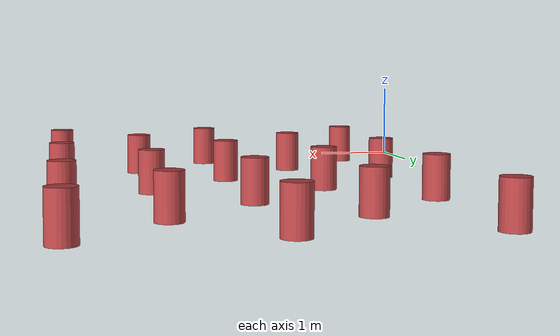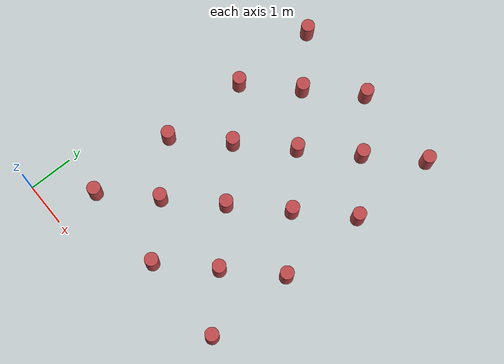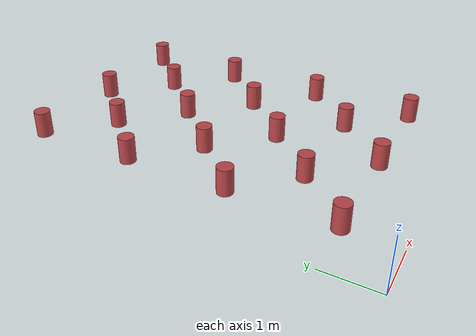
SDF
<?xml version="1.0" ?>
<!-- |    This document was autogenerated by xacro from objetos_cilindrocos.xacro.sdf  | -->
<!-- |    EDITING THIS FILE BY HAND IS NOT RECOMMENDED                                 | -->
<!-- arquivo: objetos_cilindricos.xacro -->
<!-- Gerar com:
     $ xacro objetos_cilindrocos.xacro.sdf > model.sdf
-->
<sdf version="1.8">
  <model name="obstaculos_cilindricos">
    <static>true</static>
    <link name="obstaculos">
      <collision name="um_um_collision">
        <pose>1 1 0.25 0 0 0</pose>
        <geometry>
          <cylinder>
            <radius>0.15</radius>
            <length>0.5</length>
          </cylinder>
        </geometry>
        <max_contacts>10</max_contacts>
        <surface>
          <bounce/>
          <friction>
            <ode/>
          </friction>
          <contact>
            <ode/>
          </contact>
        </surface>
      </collision>
      <visual name="um_um_visual">
        <pose>1 1 0.25 0 0 0</pose>
        <geometry>
          <cylinder>
            <radius>0.15</radius>
            <length>0.5</length>
          </cylinder>
        </geometry>
        <material>
          <ambient>.74 .28 .29 1</ambient>
          <diffuse>.74 .28 .29 1</diffuse>
          <specular>1 1 1 1</specular>
        </material>
      </visual>
      <collision name="um_tres_collision">
        <pose>1 3 0.25 0 0 0</pose>
        <geometry>
          <cylinder>
            <radius>0.15</radius>
            <length>0.5</length>
          </cylinder>
        </geometry>
        <max_contacts>10</max_contacts>
        <surface>
          <bounce/>
          <friction>
            <ode/>
          </friction>
          <contact>
            <ode/>
          </contact>
        </surface>
      </collision>
      <visual name="um_tres_visual">
        <pose>1 3 0.25 0 0 0</pose>
        <geometry>
          <cylinder>
            <radius>0.15</radius>
            <length>0.5</length>
          </cylinder>
        </geometry>
        <material>
          <ambient>.74 .28 .29 1</ambient>
          <diffuse>.74 .28 .29 1</diffuse>
          <specular>1 1 1 1</specular>
        </material>
      </visual>
      <collision name="um_cinco_collision">
        <pose>1 5 0.25 0 0 0</pose>
        <geometry>
          <cylinder>
            <radius>0.15</radius>
            <length>0.5</length>
          </cylinder>
        </geometry>
        <max_contacts>10</max_contacts>
        <surface>
          <bounce/>
          <friction>
            <ode/>
          </friction>
          <contact>
            <ode/>
          </contact>
        </surface>
      </collision>
      <visual name="um_cinco_visual">
        <pose>1 5 0.25 0 0 0</pose>
        <geometry>
          <cylinder>
            <radius>0.15</radius>
            <length>0.5</length>
          </cylinder>
        </geometry>
        <material>
          <ambient>.74 .28 .29 1</ambient>
          <diffuse>.74 .28 .29 1</diffuse>
          <specular>1 1 1 1</specular>
        </material>
      </visual>
      <collision name="um_sete_collision">
        <pose>1 7 0.25 0 0 0</pose>
        <geometry>
          <cylinder>
            <radius>0.15</radius>
            <length>0.5</length>
          </cylinder>
        </geometry>
        <max_contacts>10</max_contacts>
        <surface>
          <bounce/>
          <friction>
            <ode/>
          </friction>
          <contact>
            <ode/>
          </contact>
        </surface>
      </collision>
      <visual name="um_sete_visual">
        <pose>1 7 0.25 0 0 0</pose>
        <geometry>
          <cylinder>
            <radius>0.15</radius>
            <length>0.5</length>
          </cylinder>
        </geometry>
        <material>
          <ambient>.74 .28 .29 1</ambient>
          <diffuse>.74 .28 .29 1</diffuse>
          <specular>1 1 1 1</specular>
        </material>
      </visual>
      <collision name="dois_dois_collision">
        <pose>2 2 0.25 0 0 0</pose>
        <geometry>
          <cylinder>
            <radius>0.15</radius>
            <length>0.5</length>
          </cylinder>
        </geometry>
        <max_contacts>10</max_contacts>
        <surface>
          <bounce/>
          <friction>
            <ode/>
          </friction>
          <contact>
            <ode/>
          </contact>
        </surface>
      </collision>
      <visual name="dois_dois_visual">
        <pose>2 2 0.25 0 0 0</pose>
        <geometry>
          <cylinder>
            <radius>0.15</radius>
            <length>0.5</length>
          </cylinder>
        </geometry>
        <material>
          <ambient>.74 .28 .29 1</ambient>
          <diffuse>.74 .28 .29 1</diffuse>
          <specular>1 1 1 1</specular>
        </material>
      </visual>
      <collision name="dois_tres_collision">
        <pose>2 4 0.25 0 0 0</pose>
        <geometry>
          <cylinder>
            <radius>0.15</radius>
            <length>0.5</length>
          </cylinder>
        </geometry>
        <max_contacts>10</max_contacts>
        <surface>
          <bounce/>
          <friction>
            <ode/>
          </friction>
          <contact>
            <ode/>
          </contact>
        </surface>
      </collision>
      <visual name="dois_tres_visual">
        <pose>2 4 0.25 0 0 0</pose>
        <geometry>
          <cylinder>
            <radius>0.15</radius>
            <length>0.5</length>
          </cylinder>
        </geometry>
        <material>
          <ambient>.74 .28 .29 1</ambient>
          <diffuse>.74 .28 .29 1</diffuse>
          <specular>1 1 1 1</specular>
        </material>
      </visual>
      <collision name="dois_seis_collision">
        <pose>2 6 0.25 0 0 0</pose>
        <geometry>
          <cylinder>
            <radius>0.15</radius>
            <length>0.5</length>
          </cylinder>
        </geometry>
        <max_contacts>10</max_contacts>
        <surface>
          <bounce/>
          <friction>
            <ode/>
          </friction>
          <contact>
            <ode/>
          </contact>
        </surface>
      </collision>
      <visual name="dois_seis_visual">
        <pose>2 6 0.25 0 0 0</pose>
        <geometry>
          <cylinder>
            <radius>0.15</radius>
            <length>0.5</length>
          </cylinder>
        </geometry>
        <material>
          <ambient>.74 .28 .29 1</ambient>
          <diffuse>.74 .28 .29 1</diffuse>
          <specular>1 1 1 1</specular>
        </material>
      </visual>
      <collision name="tres_um_collision">
        <pose>3 1 0.25 0 0 0</pose>
        <geometry>
          <cylinder>
            <radius>0.15</radius>
            <length>0.5</length>
          </cylinder>
        </geometry>
        <max_contacts>10</max_contacts>
        <surface>
          <bounce/>
          <friction>
            <ode/>
          </friction>
          <contact>
            <ode/>
          </contact>
        </surface>
      </collision>
      <visual name="tres_um_visual">
        <pose>3 1 0.25 0 0 0</pose>
        <geometry>
          <cylinder>
            <radius>0.15</radius>
            <length>0.5</length>
          </cylinder>
        </geometry>
        <material>
          <ambient>.74 .28 .29 1</ambient>
          <diffuse>.74 .28 .29 1</diffuse>
          <specular>1 1 1 1</specular>
        </material>
      </visual>
      <collision name="tres_tres_collision">
        <pose>3 3 0.25 0 0 0</pose>
        <geometry>
          <cylinder>
            <radius>0.15</radius>
            <length>0.5</length>
          </cylinder>
        </geometry>
        <max_contacts>10</max_contacts>
        <surface>
          <bounce/>
          <friction>
            <ode/>
          </friction>
          <contact>
            <ode/>
          </contact>
        </surface>
      </collision>
      <visual name="tres_tres_visual">
        <pose>3 3 0.25 0 0 0</pose>
        <geometry>
          <cylinder>
            <radius>0.15</radius>
            <length>0.5</length>
          </cylinder>
        </geometry>
        <material>
          <ambient>.74 .28 .29 1</ambient>
          <diffuse>.74 .28 .29 1</diffuse>
          <specular>1 1 1 1</specular>
        </material>
      </visual>
      <collision name="tres_cinco_collision">
        <pose>3 5 0.25 0 0 0</pose>
        <geometry>
          <cylinder>
            <radius>0.15</radius>
            <length>0.5</length>
          </cylinder>
        </geometry>
        <max_contacts>10</max_contacts>
        <surface>
          <bounce/>
          <friction>
            <ode/>
          </friction>
          <contact>
            <ode/>
          </contact>
        </surface>
      </collision>
      <visual name="tres_cinco_visual">
        <pose>3 5 0.25 0 0 0</pose>
        <geometry>
          <cylinder>
            <radius>0.15</radius>
            <length>0.5</length>
          </cylinder>
        </geometry>
        <material>
          <ambient>.74 .28 .29 1</ambient>
          <diffuse>.74 .28 .29 1</diffuse>
          <specular>1 1 1 1</specular>
        </material>
      </visual>
      <collision name="tres_sete_collision">
        <pose>3 7 0.25 0 0 0</pose>
        <geometry>
          <cylinder>
            <radius>0.15</radius>
            <length>0.5</length>
          </cylinder>
        </geometry>
        <max_contacts>10</max_contacts>
        <surface>
          <bounce/>
          <friction>
            <ode/>
          </friction>
          <contact>
            <ode/>
          </contact>
        </surface>
      </collision>
      <visual name="tres_sete_visual">
        <pose>3 7 0.25 0 0 0</pose>
        <geometry>
          <cylinder>
            <radius>0.15</radius>
            <length>0.5</length>
          </cylinder>
        </geometry>
        <material>
          <ambient>.74 .28 .29 1</ambient>
          <diffuse>.74 .28 .29 1</diffuse>
          <specular>1 1 1 1</specular>
        </material>
      </visual>
      <collision name="quatro_dois_collision">
        <pose>4 2 0.25 0 0 0</pose>
        <geometry>
          <cylinder>
            <radius>0.15</radius>
            <length>0.5</length>
          </cylinder>
        </geometry>
        <max_contacts>10</max_contacts>
        <surface>
          <bounce/>
          <friction>
            <ode/>
          </friction>
          <contact>
            <ode/>
          </contact>
        </surface>
      </collision>
      <visual name="quatro_dois_visual">
        <pose>4 2 0.25 0 0 0</pose>
        <geometry>
          <cylinder>
            <radius>0.15</radius>
            <length>0.5</length>
          </cylinder>
        </geometry>
        <material>
          <ambient>.74 .28 .29 1</ambient>
          <diffuse>.74 .28 .29 1</diffuse>
          <specular>1 1 1 1</specular>
        </material>
      </visual>
      <collision name="quatro_tres_collision">
        <pose>4 4 0.25 0 0 0</pose>
        <geometry>
          <cylinder>
            <radius>0.15</radius>
            <length>0.5</length>
          </cylinder>
        </geometry>
        <max_contacts>10</max_contacts>
        <surface>
          <bounce/>
          <friction>
            <ode/>
          </friction>
          <contact>
            <ode/>
          </contact>
        </surface>
      </collision>
      <visual name="quatro_tres_visual">
        <pose>4 4 0.25 0 0 0</pose>
        <geometry>
          <cylinder>
            <radius>0.15</radius>
            <length>0.5</length>
          </cylinder>
        </geometry>
        <material>
          <ambient>.74 .28 .29 1</ambient>
          <diffuse>.74 .28 .29 1</diffuse>
          <specular>1 1 1 1</specular>
        </material>
      </visual>
      <collision name="quatro_seis_collision">
        <pose>4 6 0.25 0 0 0</pose>
        <geometry>
          <cylinder>
            <radius>0.15</radius>
            <length>0.5</length>
          </cylinder>
        </geometry>
        <max_contacts>10</max_contacts>
        <surface>
          <bounce/>
          <friction>
            <ode/>
          </friction>
          <contact>
            <ode/>
          </contact>
        </surface>
      </collision>
      <visual name="quatro_seis_visual">
        <pose>4 6 0.25 0 0 0</pose>
        <geometry>
          <cylinder>
            <radius>0.15</radius>
            <length>0.5</length>
          </cylinder>
        </geometry>
        <material>
          <ambient>.74 .28 .29 1</ambient>
          <diffuse>.74 .28 .29 1</diffuse>
          <specular>1 1 1 1</specular>
        </material>
      </visual>
      <collision name="cinco_um_collision">
        <pose>5 1 0.25 0 0 0</pose>
        <geometry>
          <cylinder>
            <radius>0.15</radius>
            <length>0.5</length>
          </cylinder>
        </geometry>
        <max_contacts>10</max_contacts>
        <surface>
          <bounce/>
          <friction>
            <ode/>
          </friction>
          <contact>
            <ode/>
          </contact>
        </surface>
      </collision>
      <visual name="cinco_um_visual">
        <pose>5 1 0.25 0 0 0</pose>
        <geometry>
          <cylinder>
            <radius>0.15</radius>
            <length>0.5</length>
          </cylinder>
        </geometry>
        <material>
          <ambient>.74 .28 .29 1</ambient>
          <diffuse>.74 .28 .29 1</diffuse>
          <specular>1 1 1 1</specular>
        </material>
      </visual>
      <collision name="cinco_tres_collision">
        <pose>5 3 0.25 0 0 0</pose>
        <geometry>
          <cylinder>
            <radius>0.15</radius>
            <length>0.5</length>
          </cylinder>
        </geometry>
        <max_contacts>10</max_contacts>
        <surface>
          <bounce/>
          <friction>
            <ode/>
          </friction>
          <contact>
            <ode/>
          </contact>
        </surface>
      </collision>
      <visual name="cinco_tres_visual">
        <pose>5 3 0.25 0 0 0</pose>
        <geometry>
          <cylinder>
            <radius>0.15</radius>
            <length>0.5</length>
          </cylinder>
        </geometry>
        <material>
          <ambient>.74 .28 .29 1</ambient>
          <diffuse>.74 .28 .29 1</diffuse>
          <specular>1 1 1 1</specular>
        </material>
      </visual>
      <collision name="cinco_cinco_collision">
        <pose>5 5 0.25 0 0 0</pose>
        <geometry>
          <cylinder>
            <radius>0.15</radius>
            <length>0.5</length>
          </cylinder>
        </geometry>
        <max_contacts>10</max_contacts>
        <surface>
          <bounce/>
          <friction>
            <ode/>
          </friction>
          <contact>
            <ode/>
          </contact>
        </surface>
      </collision>
      <visual name="cinco_cinco_visual">
        <pose>5 5 0.25 0 0 0</pose>
        <geometry>
          <cylinder>
            <radius>0.15</radius>
            <length>0.5</length>
          </cylinder>
        </geometry>
        <material>
          <ambient>.74 .28 .29 1</ambient>
          <diffuse>.74 .28 .29 1</diffuse>
          <specular>1 1 1 1</specular>
        </material>
      </visual>
      <collision name="cinco_sete_collision">
        <pose>5 7 0.25 0 0 0</pose>
        <geometry>
          <cylinder>
            <radius>0.15</radius>
            <length>0.5</length>
          </cylinder>
        </geometry>
        <max_contacts>10</max_contacts>
        <surface>
          <bounce/>
          <friction>
            <ode/>
          </friction>
          <contact>
            <ode/>
          </contact>
        </surface>
      </collision>
      <visual name="cinco_sete_visual">
        <pose>5 7 0.25 0 0 0</pose>
        <geometry>
          <cylinder>
            <radius>0.15</radius>
            <length>0.5</length>
          </cylinder>
        </geometry>
        <material>
          <ambient>.74 .28 .29 1</ambient>
          <diffuse>.74 .28 .29 1</diffuse>
          <specular>1 1 1 1</specular>
        </material>
      </visual>
    </link>
  </model>
</sdf>
